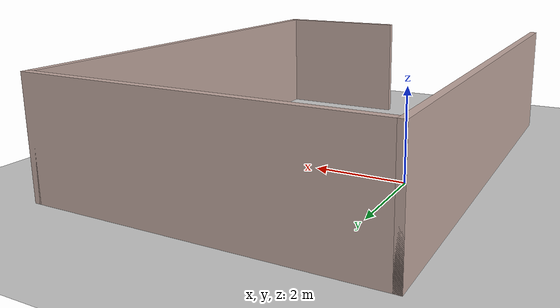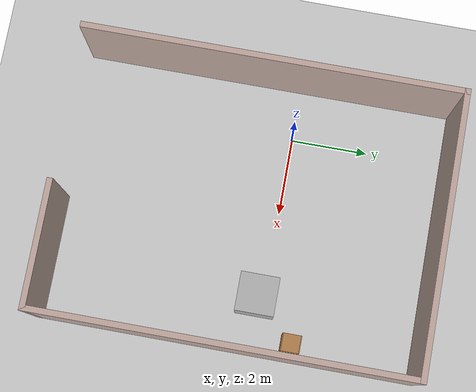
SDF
<sdf version="1.9">
 <world name="default">
  <gravity>0 0 -9.8</gravity>
  <magnetic_field>6e-06 2.3e-05 -4.2e-05</magnetic_field>
  <atmosphere type="adiabatic"/>
  <physics type="ode">
   <max_step_size>0.001</max_step_size>
   <real_time_factor>1</real_time_factor>
   <real_time_update_rate>1000</real_time_update_rate>
  </physics>
  <scene><ambient>0.9 0.9 0.9 1</ambient><background>0.8 0.8 0.8 1</background><shadows>true</shadows></scene>
  <light name="sun" type="directional">
   <pose>0 0 15 0 0 0</pose>
   <diffuse>1 1 1 1</diffuse>
   <specular>0.3 0.3 0.3 1</specular>
   <direction>-0.5 0.1 -0.9</direction>
  </light>
  <audio><device>default</device></audio>
  <spherical_coordinates>
   <surface_model>EARTH_WGS84</surface_model>
   <latitude_deg>0</latitude_deg>
   <longitude_deg>0</longitude_deg>
   <elevation>0</elevation>
   <heading_deg>0</heading_deg>
  </spherical_coordinates>
  <model name="ground_plane">
   <static>true</static>
   <link name="link">
    <collision name="collision">
     <geometry><plane><normal>0 0 1</normal><size>100 100</size></plane></geometry>
     <surface>
      <contact><collide_bitmask>65535</collide_bitmask></contact>
      <friction><ode><mu>100</mu><mu2>50</mu2></ode></friction>
     </surface>
    </collision>
    <visual name="visual">
     <cast_shadows>false</cast_shadows>
     <geometry><plane><normal>0 0 1</normal><size>100 100</size></plane></geometry>
     <material>
      <script><uri>file://media/materials/scripts/gazebo.material</uri><name>Gazebo/Grey</name></script>
     </material>
    </visual>
    <inertial>
     <mass>1</mass>
     <inertia><ixx>1</ixx><ixy>0</ixy><ixz>0</ixz><iyy>1</iyy><iyz>0</iyz><izz>1</izz></inertia>
    </inertial>
   </link>
  </model>
  <model name="Untitled">
   <pose>2.15235 -0.777333 0 0 -0 0</pose>
   <link name="Wall_5">
    <collision name="Wall_5_Collision">
     <geometry><box><size>9.75 0.15 2.5</size></box></geometry>
     <pose>0 0 1.25 0 -0 0</pose>
    </collision>
    <visual name="Wall_5_Visual">
     <pose>0 0 1.25 0 -0 0</pose>
     <geometry><box><size>9.75 0.15 2.5</size></box></geometry>
     <material>
      <script><uri>file://media/materials/scripts/gazebo.material</uri><name>Gazebo/Grey</name></script>
      <ambient>0.760784 0.662745 0.627451 1</ambient>
     </material>
     <meta><layer>0</layer></meta>
    </visual>
    <pose>-3.55 0 0 0 -0 1.5708</pose>
    <inertial>
     <mass>1</mass>
     <inertia><ixx>1</ixx><ixy>0</ixy><ixz>0</ixz><iyy>1</iyy><iyz>0</iyz><izz>1</izz></inertia>
    </inertial>
   </link>
   <link name="Wall_7">
    <collision name="Wall_7_Collision">
     <geometry><box><size>7.25 0.15 2.5</size></box></geometry>
     <pose>0 0 1.25 0 -0 0</pose>
    </collision>
    <visual name="Wall_7_Visual">
     <pose>0 0 1.25 0 -0 0</pose>
     <geometry><box><size>7.25 0.15 2.5</size></box></geometry>
     <material>
      <script><uri>file://media/materials/scripts/gazebo.material</uri><name>Gazebo/Grey</name></script>
      <ambient>0.760784 0.662745 0.627451 1</ambient>
     </material>
     <meta><layer>0</layer></meta>
    </visual>
    <pose>0 4.8 0 0 0 -0</pose>
    <inertial>
     <mass>1</mass>
     <inertia><ixx>1</ixx><ixy>0</ixy><ixz>0</ixz><iyy>1</iyy><iyz>0</iyz><izz>1</izz></inertia>
    </inertial>
   </link>
   <link name="Wall_8">
    <collision name="Wall_8_Collision">
     <geometry><box><size>9.75 0.15 2.5</size></box></geometry>
     <pose>0 0 1.25 0 -0 0</pose>
    </collision>
    <visual name="Wall_8_Visual">
     <pose>0 0 1.25 0 -0 0</pose>
     <geometry><box><size>9.75 0.15 2.5</size></box></geometry>
     <material>
      <script><uri>file://media/materials/scripts/gazebo.material</uri><name>Gazebo/Grey</name></script>
      <ambient>0.760784 0.662745 0.627451 1</ambient>
     </material>
     <meta><layer>0</layer></meta>
    </visual>
    <pose>3.55 -0 0 0 0 -1.5708</pose>
    <inertial>
     <mass>1</mass>
     <inertia><ixx>1</ixx><ixy>0</ixy><ixz>0</ixz><iyy>1</iyy><iyz>0</iyz><izz>1</izz></inertia>
    </inertial>
   </link>
   <link name="Wall_9">
    <collision name="Wall_9_Collision">
     <geometry><box><size>3.25 0.15 2.5</size></box></geometry>
     <pose>0 0 1.25 0 -0 0</pose>
    </collision>
    <visual name="Wall_9_Visual">
     <pose>0 0 1.25 0 -0 0</pose>
     <geometry><box><size>3.25 0.15 2.5</size></box></geometry>
     <material>
      <script><uri>file://media/materials/scripts/gazebo.material</uri><name>Gazebo/Grey</name></script>
      <ambient>0.760784 0.662745 0.627451 1</ambient>
     </material>
     <meta><layer>0</layer></meta>
    </visual>
    <pose>2 -4.8 0 0 -0 3.14159</pose>
    <inertial>
     <mass>1</mass>
     <inertia><ixx>1</ixx><ixy>0</ixy><ixz>0</ixz><iyy>1</iyy><iyz>0</iyz><izz>1</izz></inertia>
    </inertial>
   </link>
   <static>true</static>
  </model>
  <model name="cabinet">
   <static>true</static>
   <link name="cabinet_bottom_plate">
    <inertial>
     <pose>0 0 -1 0 -0 0</pose>
     <inertia>
      <ixx>2.0499999999999998</ixx>
      <ixy>0</ixy>
      <ixz>0</ixz>
      <iyy>2.0499999999999998</iyy>
      <iyz>0</iyz>
      <izz>2.0499999999999998</izz>
     </inertia>
     <mass>25</mass>
    </inertial>
    <collision name="cabinet_bottom_plate_geom">
     <pose>0 0 0.01 0 -0 0</pose>
     <geometry><box><size>0.45 0.45 0.02</size></box></geometry>
    </collision>
    <visual name="cabinet_bottom_plate_geom_visual">
     <pose>0 0 0.01 0 -0 0</pose>
     <geometry><box><size>0.45 0.45 0.02</size></box></geometry>
     <material>
      <script><uri>file://media/materials/scripts/gazebo.material</uri><name>Gazebo/Wood</name></script>
     </material>
    </visual>
    <collision name="cabinet_bottom_plate_geom_cabinet_back_plate">
     <pose>0.235 0 0.51 0 -0 0</pose>
     <geometry><box><size>0.02 0.45 1.02</size></box></geometry>
    </collision>
    <visual name="cabinet_bottom_plate_geom_cabinet_back_plate_visual">
     <pose>0.235 0 0.51 0 -0 0</pose>
     <geometry><box><size>0.02 0.45 1.02</size></box></geometry>
     <material>
      <script><uri>file://media/materials/scripts/gazebo.material</uri><name>Gazebo/Wood</name></script>
     </material>
    </visual>
    <collision name="cabinet_bottom_plate_geom_cabinet_left_plate">
     <pose>0 0.235 0.51 0 -0 0</pose>
     <geometry><box><size>0.45 0.02 1.02</size></box></geometry>
    </collision>
    <visual name="cabinet_bottom_plate_geom_cabinet_left_plate_visual">
     <pose>0 0.235 0.51 0 -0 0</pose>
     <geometry><box><size>0.45 0.02 1.02</size></box></geometry>
     <material>
      <script><uri>file://media/materials/scripts/gazebo.material</uri><name>Gazebo/Wood</name></script>
     </material>
    </visual>
    <collision name="cabinet_bottom_plate_geom_cabinet_middle_plate">
     <pose>0 0 0.51 0 -0 0</pose>
     <geometry><box><size>0.45 0.45 0.02</size></box></geometry>
    </collision>
    <visual name="cabinet_bottom_plate_geom_cabinet_middle_plate_visual">
     <pose>0 0 0.51 0 -0 0</pose>
     <geometry><box><size>0.45 0.45 0.02</size></box></geometry>
     <material>
      <script><uri>file://media/materials/scripts/gazebo.material</uri><name>Gazebo/Wood</name></script>
     </material>
    </visual>
    <collision name="cabinet_bottom_plate_geom_cabinet_right_plate">
     <pose>0 -0.235 0.51 0 -0 0</pose>
     <geometry><box><size>0.45 0.02 1.02</size></box></geometry>
    </collision>
    <visual name="cabinet_bottom_plate_geom_cabinet_right_plate_visual">
     <pose>0 -0.235 0.51 0 -0 0</pose>
     <geometry><box><size>0.45 0.02 1.02</size></box></geometry>
     <material>
      <script><uri>file://media/materials/scripts/gazebo.material</uri><name>Gazebo/Wood</name></script>
     </material>
    </visual>
    <collision name="cabinet_bottom_plate_geom_cabinet_top_plate">
     <pose>0 0 1.01 0 -0 0</pose>
     <geometry><box><size>0.45 0.45 0.02</size></box></geometry>
    </collision>
    <visual name="cabinet_bottom_plate_geom_cabinet_top_plate_visual">
     <pose>0 0 1.01 0 -0 0</pose>
     <geometry><box><size>0.45 0.45 0.02</size></box></geometry>
     <material>
      <script><uri>file://media/materials/scripts/gazebo.material</uri><name>Gazebo/Wood</name></script>
     </material>
    </visual>
   </link>
   <pose>5.31652 0.862402 0 0 -0 0</pose>
  </model>
  <model name="box">
   <pose>4.25527 -0.176896 0.499999 -0 0 5.6e-05</pose>
   <link name="box_link">
    <inertial>
     <inertia><ixx>0.16666</ixx><ixy>0</ixy><ixz>0</ixz><iyy>0.16666</iyy><iyz>0</iyz><izz>0.16666</izz></inertia>
     <mass>1</mass>
    </inertial>
    <collision name="box_collision"><geometry><box><size>1 1 1</size></box></geometry></collision>
    <visual name="box_visual">
     <geometry><box><size>1 1 1</size></box></geometry>
     <material>
      <ambient>0.3 0.3 0.3 1</ambient>
      <diffuse>0.7 0.7 0.7 1</diffuse>
      <specular>1 1 1 1</specular>
     </material>
    </visual>
   </link>
   <static>false</static>
  </model>
  <light name="sun" type="directional">
   <pose>0 0 10 0 -0 0</pose>
   <intensity>1</intensity>
   <direction>-0.5 0.1 -0.9</direction>
   <diffuse>0.8 0.8 0.8 1</diffuse>
   <specular>0.2 0.2 0.2 1</specular>
   <attenuation>
    <range>1000</range>
    <linear>0.01</linear>
    <constant>0.90000000000000002</constant>
    <quadratic>0.001</quadratic>
   </attenuation>
   <spot><inner_angle>0</inner_angle><outer_angle>0</outer_angle><falloff>0</falloff></spot>
  </light>
  <light name="user_point_light_0" type="point">
   <pose>4.52747 3.18313 1 0 -0 0</pose>
   <cast_shadows>false</cast_shadows>
   <intensity>1</intensity>
   <direction>0 0 -1</direction>
   <diffuse>0.5 0.5 0.5 1</diffuse>
   <specular>0.1 0.1 0.1 1</specular>
   <attenuation>
    <range>20</range>
    <linear>0.01</linear>
    <constant>0.5</constant>
    <quadratic>0.001</quadratic>
   </attenuation>
   <spot><inner_angle>0</inner_angle><outer_angle>0</outer_angle><falloff>0</falloff></spot>
  </light>
 </world>
</sdf>
